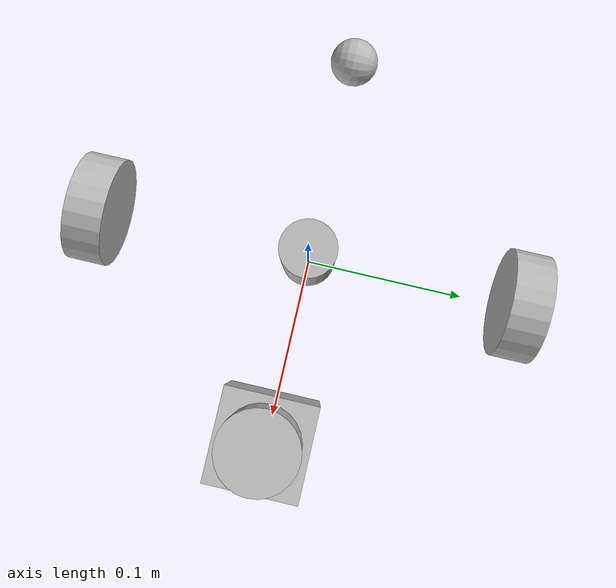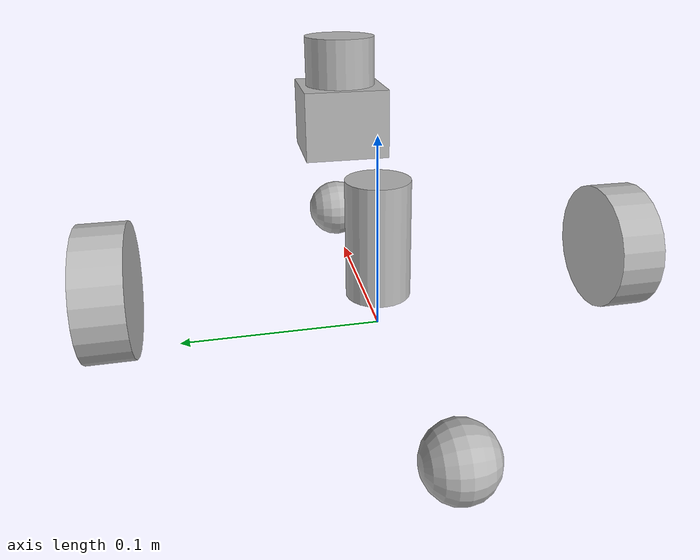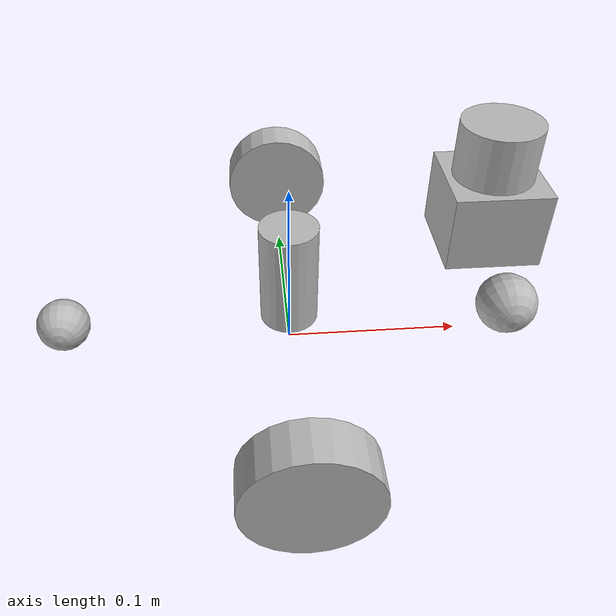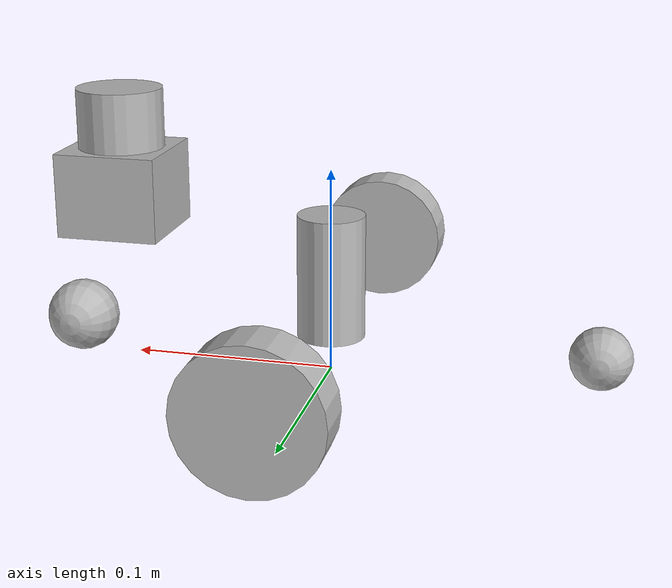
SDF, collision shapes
<?xml version="1.0" ?>
<sdf version="1.6">
  <model name="irobot_02_prex">

    <include>
      <uri>model://create</uri>
    </include>

    <include>
      <uri>model://hokuyo_ros2_sensor</uri>
      <pose>0.105 0 0.1 0 0 0</pose>
    </include>

    <joint type="fixed" name="camera_joint">
      <child>hokuyo_ros2_sensor::link</child>
      <parent>create::base</parent>
    </joint>

    <plugin name="object_controller" filename="libgazebo_ros_planar_move.so">
			<ros>
				<namespace>/irobot02</namespace>
			</ros>
			<odometryTopic>odom</odometryTopic>
			<odometryFrame>odom</odometryFrame>
			<odometryRate>20.0</odometryRate>
			<robotBaseFrame>create::base</robotBaseFrame>
		</plugin>

  </model>
</sdf>

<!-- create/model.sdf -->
<sdf version="1.5">
  <model name="create">
    <link name="base">
      <inertial>
        <pose>0.001453 -0.000453 0.029787 0 0 0</pose>
        <inertia>
          <ixx>0.058640</ixx>
          <ixy>0.000124</ixy>
          <ixz>0.000615</ixz>
          <iyy>0.058786</iyy>
          <iyz>0.000014</iyz>
          <izz>1.532440</izz>
        </inertia>
        <mass>2.234000</mass>
      </inertial>
      <collision name="base_collision">
        <pose>0 0 0.047800 0 0 0</pose>
        <geometry>
          <cylinder>
            <radius>0.016495</radius>
            <length>0.061163</length>
          </cylinder>
        </geometry>
      </collision>
      <visual name="base_visual">
        <pose>0 0 0.047800 0 0 0</pose>
        <geometry>
          <mesh>
            <uri>model://../model_source/models/create/meshes/create_body.dae</uri>
          </mesh>
        </geometry>
      </visual>
      <collision name="front_wheel_collision">
        <pose>0.130000 0 0.017000 0 1.570700 1.570700</pose>
        <geometry>
          <sphere>
            <radius>0.018000</radius>
          </sphere>
        </geometry>
        <surface>
          <friction>
            <ode>
              <mu>0</mu>
              <mu2>0</mu2>
              <fdir1>0 0 0</fdir1>
              <slip1>0</slip1>
              <slip2>0</slip2>
            </ode>
          </friction>
        </surface>
      </collision>
      <visual name="front_wheel_visual">
        <pose>0.130000 0 0.017000 0 1.570700 1.570700</pose>
        <geometry>
          <sphere>
            <radius>0.009000</radius>
          </sphere>
        </geometry>
      </visual>
      <collision name="rear_wheel_collision">
        <pose>-0.13 0 0.017 0 1.5707 1.5707</pose>
        <geometry>
          <sphere>
            <radius>0.015000</radius>
          </sphere>
        </geometry>
        <surface>
          <friction>
            <ode>
              <mu>0</mu>
              <mu2>0</mu2>
              <fdir1>0 0 0</fdir1>
              <slip1>0</slip1>
              <slip2>0</slip2>
            </ode>
          </friction>
        </surface>
      </collision>
      <visual name="rear_wheel_visual">
        <pose>-0.130000 0 0.017000 0 1.570700 1.570700</pose>
        <geometry>
          <sphere>
            <radius>0.007500</radius>
          </sphere>
        </geometry>
      </visual>
      <sensor name="left_cliff_sensor" type="ray">
        <pose>0.070000 0.140000 0.027000 0 1.570790 0</pose>
        <ray>
          <scan>
            <horizontal>
              <samples>1</samples>
              <resolution>1.000000</resolution>
              <min_angle>0</min_angle>
              <max_angle>0</max_angle>
            </horizontal>
          </scan>
          <range>
            <min>0.010000</min>
            <max>0.040000</max>
            <resolution>0.100000</resolution>
          </range>
        </ray>
      </sensor>
      <sensor name="leftfront_cliff_sensor" type="ray">
        <pose>0.150000 0.040000 0.027000 0 1.570790 0</pose>
        <ray>
          <scan>
            <horizontal>
              <samples>1</samples>
              <resolution>1.000000</resolution>
              <min_angle>0</min_angle>
              <max_angle>0</max_angle>
            </horizontal>
          </scan>
          <range>
            <min>0.010000</min>
            <max>0.040000</max>
            <resolution>0.100000</resolution>
          </range>
        </ray>
      </sensor>
      <sensor name="right_cliff_sensor" type="ray">
        <pose>0.070000 -0.140000 0.027000 0 1.570790 0</pose>
        <ray>
          <scan>
            <horizontal>
              <samples>1</samples>
              <resolution>1.000000</resolution>
              <min_angle>0</min_angle>
              <max_angle>0</max_angle>
            </horizontal>
          </scan>
          <range>
            <min>0.010000</min>
            <max>0.040000</max>
            <resolution>0.100000</resolution>
          </range>
        </ray>
      </sensor>
      <sensor name="rightfront_cliff_sensor" type="ray">
        <pose>0.150000 -0.040000 0.027000 0 1.570790 0</pose>
        <ray>
          <scan>
            <horizontal>
              <samples>1</samples>
              <resolution>1.000000</resolution>
              <min_angle>0</min_angle>
              <max_angle>0</max_angle>
            </horizontal>
          </scan>
          <range>
            <min>0.010000</min>
            <max>0.040000</max>
            <resolution>0.100000</resolution>
          </range>
        </ray>
      </sensor>
      <sensor name="wall_sensor" type="ray">
        <pose>0.090000 -0.120000 0.059000 0 0 -1.000000</pose>
        <ray>
          <scan>
            <horizontal>
              <samples>1</samples>
              <resolution>1.000000</resolution>
              <min_angle>0</min_angle>
              <max_angle>0</max_angle>
            </horizontal>
          </scan>
          <range>
            <min>0.016000</min>
            <max>0.040000</max>
            <resolution>0.100000</resolution>
          </range>
        </ray>
      </sensor>
    </link>
    <link name="left_wheel">
      <pose>0 0.130000 0.032000 0 0 0</pose>
      <inertial>
        <inertia>
          <ixx>0.001000</ixx>
          <ixy>0</ixy>
          <ixz>0</ixz>
          <iyy>0.001000</iyy>
          <iyz>0</iyz>
          <izz>0.001000</izz>
        </inertia>
        <mass>0.010000</mass>
      </inertial>
      <collision name="collision">
        <pose>0 0 0 0 1.570700 1.570700</pose>
        <geometry>
          <cylinder>
            <radius>0.033000</radius>
            <length>0.023000</length>
          </cylinder>
        </geometry>
        <surface>
          <friction>
            <ode>
              <mu>10</mu>
              <mu2>10</mu2>
              <fdir1>0 0 0</fdir1>
              <slip1>0</slip1>
              <slip2>0</slip2>
            </ode>
          </friction>
        </surface>
      </collision>
      <visual name="visual">
        <pose>0 0 0 0 1.570700 1.570700</pose>
        <geometry>
          <cylinder>
            <radius>0.033000</radius>
            <length>0.023000</length>
          </cylinder>
        </geometry>
      </visual>
    </link>
    <link name="right_wheel">
      <pose>0 -0.130000 0.032000 0 0 0</pose>
      <inertial>
        <inertia>
          <ixx>0.001000</ixx>
          <ixy>0</ixy>
          <ixz>0</ixz>
          <iyy>0.001000</iyy>
          <iyz>0</iyz>
          <izz>0.001000</izz>
        </inertia>
        <mass>0.010000</mass>
      </inertial>
      <collision name="collision">
        <pose>0 0 0 0 1.570700 1.570700</pose>
        <geometry>
          <cylinder>
            <radius>0.033000</radius>
            <length>0.023000</length>
          </cylinder>
        </geometry>
        <surface>
          <friction>
            <ode>
              <mu>10</mu>
              <mu2>10</mu2>
              <fdir1>0 0 0</fdir1>
              <slip1>0</slip1>
              <slip2>0</slip2>
            </ode>
          </friction>
        </surface>
      </collision>
      <visual name="visual">
        <pose>0 0 0 0 1.570700 1.570700</pose>
        <geometry>
          <cylinder>
            <radius>0.033000</radius>
            <length>0.023000</length>
          </cylinder>
        </geometry>
      </visual>
    </link>
    <joint name="left_wheel" type="revolute">
      <parent>base</parent>
      <child>left_wheel</child>
      <axis>
        <xyz>0 1 0</xyz>
        <use_parent_model_frame>true</use_parent_model_frame>
      </axis>
    </joint>
    <joint name="right_wheel" type="revolute">
      <parent>base</parent>
      <child>right_wheel</child>
      <axis>
        <xyz>0 1 0</xyz>
        <use_parent_model_frame>true</use_parent_model_frame>
      </axis>
    </joint>
  </model>
</sdf>

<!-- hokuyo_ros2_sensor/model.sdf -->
<sdf version="1.5">
  <model name="hokuyo_ros2_sensor">
    <pose>0 0 0.035 0 0 0</pose>
    <link name="link">
      <inertial>
        <mass>0.1</mass>
      </inertial>

      <visual name="visual">
        <geometry>
          <mesh>
            <uri>model://hokuyo/meshes/hokuyo.dae</uri>
          </mesh>
        </geometry>
      </visual>

      <collision name="collision-base">
        <pose>0 0 -0.0145 0 0 0</pose>
        <geometry>
          <box>
            <size>0.05 0.05 0.041</size>
          </box>
        </geometry>
      </collision>
      <collision name="collision-top">
        <pose>0 0 0.0205 0 0 0</pose>
        <geometry>
          <cylinder>
            <radius>0.021</radius>
            <length>0.029</length>
          </cylinder>
        </geometry>
      </collision>

      <sensor name="laser" type="ray">
			   <pose>0 0 0.01 0 0 0</pose>
			   <ray>
			     <scan>
			       <horizontal>
				 <samples>1081</samples>
				 <resolution>1</resolution>
				 <min_angle>-2.3562</min_angle>
				 <max_angle>2.3562</max_angle>
			       </horizontal>
			       <vertical>
                		<samples>1</samples>
                		<min_angle>0</min_angle>
                		<max_angle>0</max_angle>
              		       </vertical>
			     </scan>
			     <range>
			       <min>0.1</min>
			       <max>30</max>
			       <resolution>0.05</resolution>
			     </range>
			   </ray>
			   <always_on>1</always_on>
			   <update_rate>40</update_rate>
			   <visualize>true</visualize>

			   <plugin name='laser' filename='libgazebo_ros_ray_sensor.so'>
			     <ros>
			       <namespace>/demo</namespace>
			       <argument>--ros-args --remap ~/out:=scan</argument>
			     </ros>
			     <output_type>sensor_msgs/LaserScan</output_type>
			   </plugin>

      </sensor>
    </link>
  </model>
</sdf>
